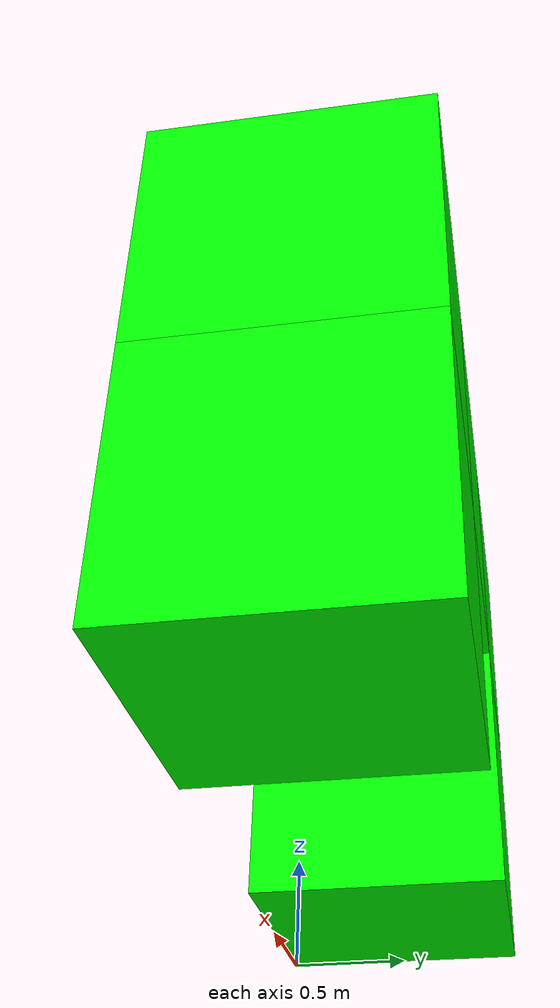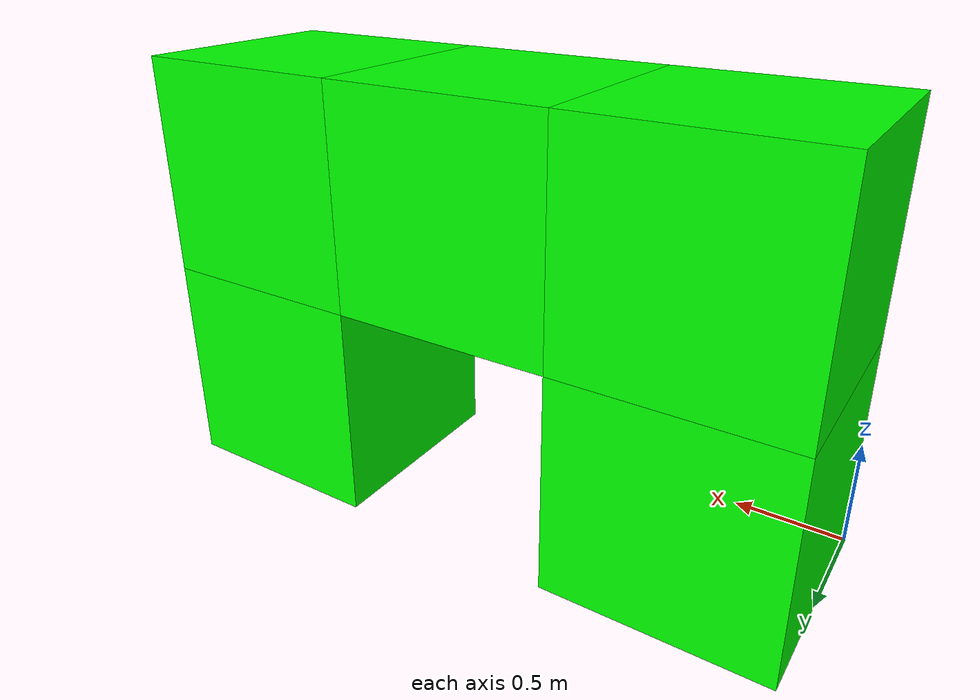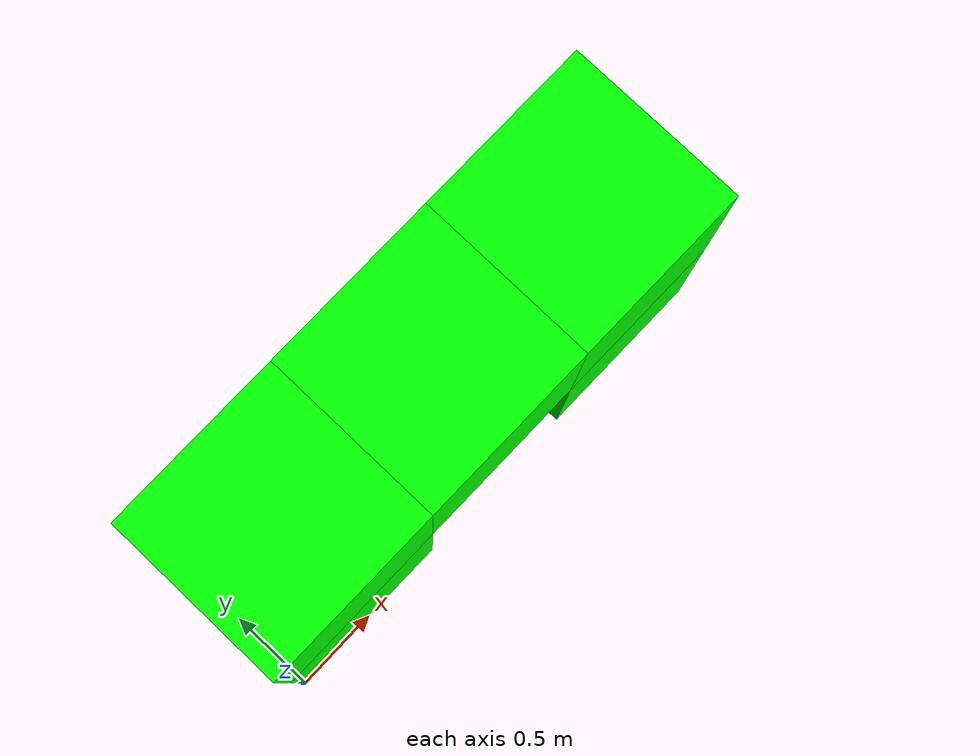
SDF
<?xml version='1.0'?>
<sdf version='1.6'>
<model name='slam_door'>
<static>true</static>
<include>
<uri>../models/slam_cube_green</uri>
<pose>0 0 0 0 0 0</pose>
</include>
<include>
<uri>../models/slam_cube_green</uri>
<pose>0 0 1 0 0 0</pose>
</include>
<include>
<uri>../models/slam_cube_green</uri>
<pose>1 0 1 0 0 0</pose>
</include>
<include>
<uri>../models/slam_cube_green</uri>
<pose>2 0 0 0 0 0</pose>
</include>
<include>
<uri>../models/slam_cube_green</uri>
<pose>2 0 1 0 0 0</pose>
</include>
</model>
</sdf>

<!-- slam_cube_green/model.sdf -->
<sdf version="1.5">
  <model name="cube">
    <static>true</static>
    <link name="link">
      <pose>0.5 0.5 0.5 0 0 0</pose>
      <collision name="collision">
        <geometry>
          <box>
            <size>0 0 0</size>
          </box>
        </geometry>
      </collision>
      <visual name="visual">
        <geometry>
          <box>
            <size>1 1 1</size>
          </box>
        </geometry>
        <material>
          <ambient>0 1 0 1</ambient>
          <diffuse>0 1 0 1</diffuse>
        </material>
      </visual>
    </link>
  </model>
</sdf>
